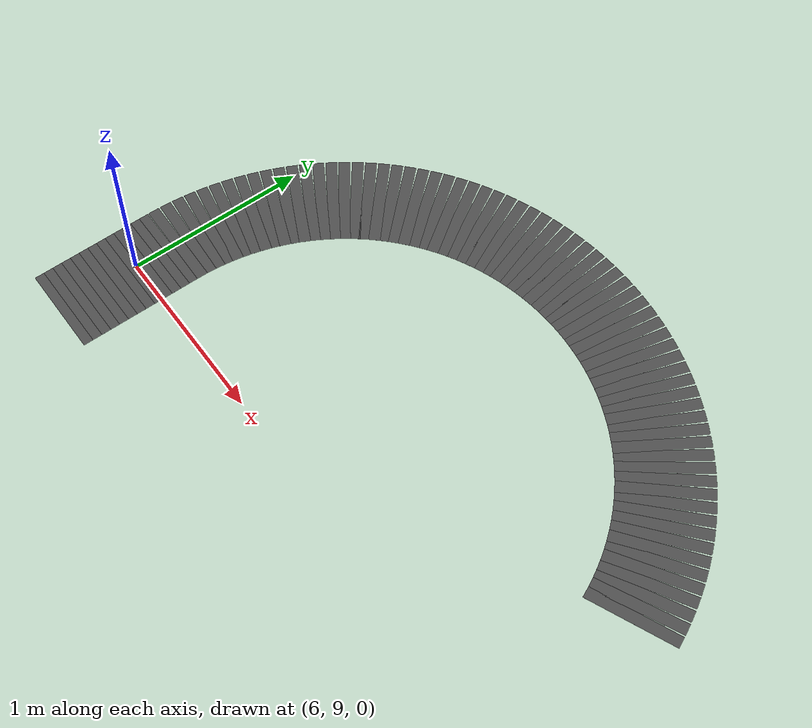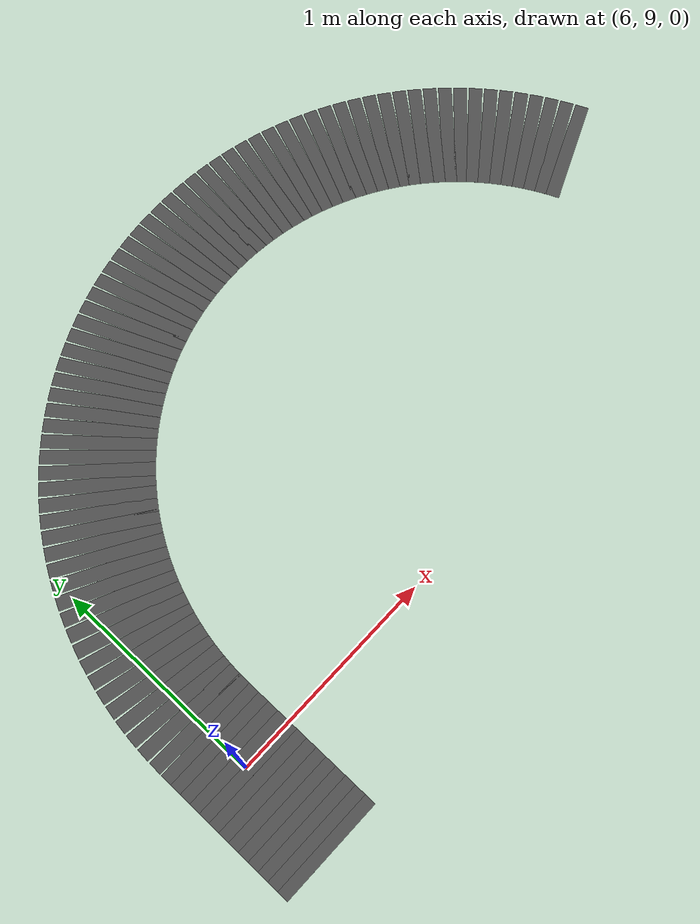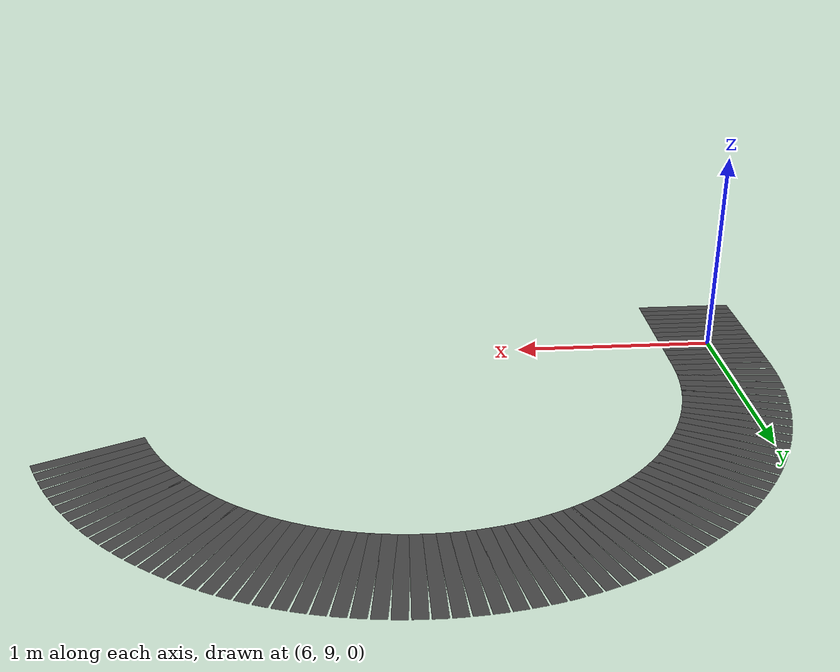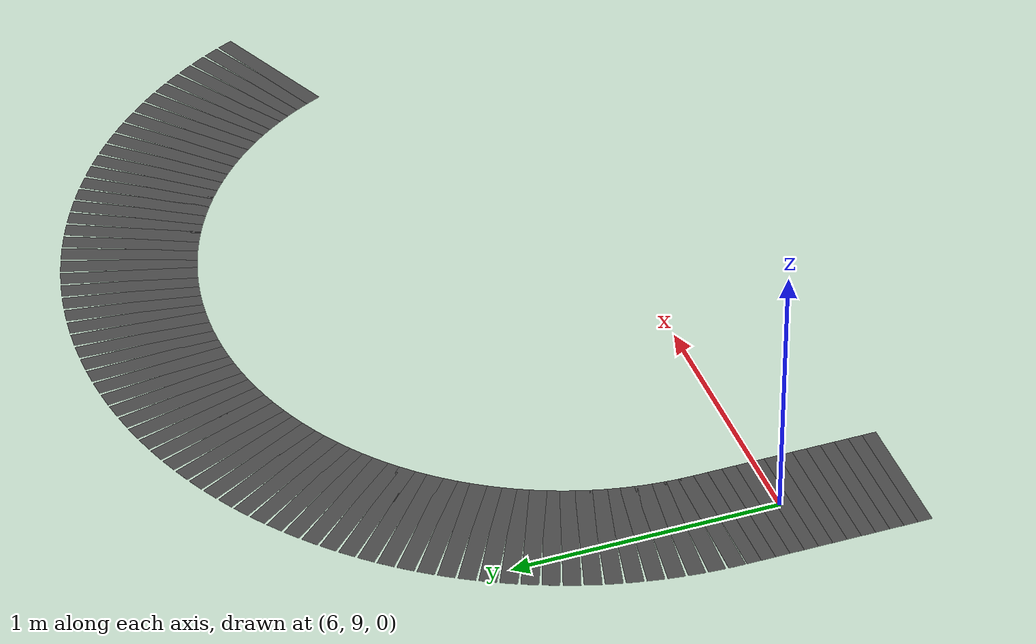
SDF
<sdf version="1.7">
 <model name="default">
  <model name="road_seg_227">
   <static>1</static>
   <link name="road_link">
    <visual name="road_visual">
     <geometry><box><size>0.062632 0.5 0.0001</size></box></geometry>
     <material>
      <script>
       <uri>model://road_material/materials/scripts</uri>
       <uri>model://road_material/materials/textures</uri>
       <name>MyRoad/Road</name>
      </script>
     </material>
    </visual>
    <collision name="road_collision"><geometry><box><size>0.062632 0.5 0.0001</size></box></geometry></collision>
   </link>
   <pose>9.01455 9.86384 0 0 -0 1.98835</pose>
  </model>
  <model name="road_seg_228">
   <static>1</static>
   <link name="road_link">
    <visual name="road_visual">
     <geometry><box><size>0.062632 0.5 0.0001</size></box></geometry>
     <material>
      <script>
       <uri>model://road_material/materials/scripts</uri>
       <uri>model://road_material/materials/textures</uri>
       <name>MyRoad/Road</name>
      </script>
     </material>
    </visual>
    <collision name="road_collision"><geometry><box><size>0.062632 0.5 0.0001</size></box></geometry></collision>
   </link>
   <pose>8.98802 9.92056 0 0 -0 2.02812</pose>
  </model>
  <model name="road_seg_229">
   <static>1</static>
   <link name="road_link">
    <visual name="road_visual">
     <geometry><box><size>0.062632 0.5 0.0001</size></box></geometry>
     <material>
      <script>
       <uri>model://road_material/materials/scripts</uri>
       <uri>model://road_material/materials/textures</uri>
       <name>MyRoad/Road</name>
      </script>
     </material>
    </visual>
    <collision name="road_collision"><geometry><box><size>0.062632 0.5 0.0001</size></box></geometry></collision>
   </link>
   <pose>8.95926 9.97619 0 0 -0 2.06788</pose>
  </model>
  <model name="road_seg_230">
   <static>1</static>
   <link name="road_link">
    <visual name="road_visual">
     <geometry><box><size>0.062632 0.5 0.0001</size></box></geometry>
     <material>
      <script>
       <uri>model://road_material/materials/scripts</uri>
       <uri>model://road_material/materials/textures</uri>
       <name>MyRoad/Road</name>
      </script>
     </material>
    </visual>
    <collision name="road_collision"><geometry><box><size>0.062632 0.5 0.0001</size></box></geometry></collision>
   </link>
   <pose>8.92831 10.0306 0 0 -0 2.10765</pose>
  </model>
  <model name="road_seg_231">
   <static>1</static>
   <link name="road_link">
    <visual name="road_visual">
     <geometry><box><size>0.062632 0.5 0.0001</size></box></geometry>
     <material>
      <script>
       <uri>model://road_material/materials/scripts</uri>
       <uri>model://road_material/materials/textures</uri>
       <name>MyRoad/Road</name>
      </script>
     </material>
    </visual>
    <collision name="road_collision"><geometry><box><size>0.062632 0.5 0.0001</size></box></geometry></collision>
   </link>
   <pose>8.89522 10.0838 0 0 -0 2.14742</pose>
  </model>
  <model name="road_seg_232">
   <static>1</static>
   <link name="road_link">
    <visual name="road_visual">
     <geometry><box><size>0.062632 0.5 0.0001</size></box></geometry>
     <material>
      <script>
       <uri>model://road_material/materials/scripts</uri>
       <uri>model://road_material/materials/textures</uri>
       <name>MyRoad/Road</name>
      </script>
     </material>
    </visual>
    <collision name="road_collision"><geometry><box><size>0.062632 0.5 0.0001</size></box></geometry></collision>
   </link>
   <pose>8.86004 10.1356 0 0 -0 2.18718</pose>
  </model>
  <model name="road_seg_233">
   <static>1</static>
   <link name="road_link">
    <visual name="road_visual">
     <geometry><box><size>0.062632 0.5 0.0001</size></box></geometry>
     <material>
      <script>
       <uri>model://road_material/materials/scripts</uri>
       <uri>model://road_material/materials/textures</uri>
       <name>MyRoad/Road</name>
      </script>
     </material>
    </visual>
    <collision name="road_collision"><geometry><box><size>0.062632 0.5 0.0001</size></box></geometry></collision>
   </link>
   <pose>8.82283 10.186 0 0 -0 2.22695</pose>
  </model>
  <model name="road_seg_234">
   <static>1</static>
   <link name="road_link">
    <visual name="road_visual">
     <geometry><box><size>0.062632 0.5 0.0001</size></box></geometry>
     <material>
      <script>
       <uri>model://road_material/materials/scripts</uri>
       <uri>model://road_material/materials/textures</uri>
       <name>MyRoad/Road</name>
      </script>
     </material>
    </visual>
    <collision name="road_collision"><geometry><box><size>0.062632 0.5 0.0001</size></box></geometry></collision>
   </link>
   <pose>8.78365 10.2348 0 0 -0 2.26672</pose>
  </model>
  <model name="road_seg_235">
   <static>1</static>
   <link name="road_link">
    <visual name="road_visual">
     <geometry><box><size>0.062632 0.5 0.0001</size></box></geometry>
     <material>
      <script>
       <uri>model://road_material/materials/scripts</uri>
       <uri>model://road_material/materials/textures</uri>
       <name>MyRoad/Road</name>
      </script>
     </material>
    </visual>
    <collision name="road_collision"><geometry><box><size>0.062632 0.5 0.0001</size></box></geometry></collision>
   </link>
   <pose>8.74256 10.2821 0 0 -0 2.30649</pose>
  </model>
  <model name="road_seg_236">
   <static>1</static>
   <link name="road_link">
    <visual name="road_visual">
     <geometry><box><size>0.062632 0.5 0.0001</size></box></geometry>
     <material>
      <script>
       <uri>model://road_material/materials/scripts</uri>
       <uri>model://road_material/materials/textures</uri>
       <name>MyRoad/Road</name>
      </script>
     </material>
    </visual>
    <collision name="road_collision"><geometry><box><size>0.062632 0.5 0.0001</size></box></geometry></collision>
   </link>
   <pose>8.69962 10.3276 0 0 -0 2.34625</pose>
  </model>
  <model name="road_seg_237">
   <static>1</static>
   <link name="road_link">
    <visual name="road_visual">
     <geometry><box><size>0.062632 0.5 0.0001</size></box></geometry>
     <material>
      <script>
       <uri>model://road_material/materials/scripts</uri>
       <uri>model://road_material/materials/textures</uri>
       <name>MyRoad/Road</name>
      </script>
     </material>
    </visual>
    <collision name="road_collision"><geometry><box><size>0.062632 0.5 0.0001</size></box></geometry></collision>
   </link>
   <pose>8.6549 10.3715 0 0 -0 2.38602</pose>
  </model>
  <model name="road_seg_238">
   <static>1</static>
   <link name="road_link">
    <visual name="road_visual">
     <geometry><box><size>0.062632 0.5 0.0001</size></box></geometry>
     <material>
      <script>
       <uri>model://road_material/materials/scripts</uri>
       <uri>model://road_material/materials/textures</uri>
       <name>MyRoad/Road</name>
      </script>
     </material>
    </visual>
    <collision name="road_collision"><geometry><box><size>0.062632 0.5 0.0001</size></box></geometry></collision>
   </link>
   <pose>8.60848 10.4135 0 0 -0 2.42579</pose>
  </model>
  <model name="road_seg_239">
   <static>1</static>
   <link name="road_link">
    <visual name="road_visual">
     <geometry><box><size>0.062632 0.5 0.0001</size></box></geometry>
     <material>
      <script>
       <uri>model://road_material/materials/scripts</uri>
       <uri>model://road_material/materials/textures</uri>
       <name>MyRoad/Road</name>
      </script>
     </material>
    </visual>
    <collision name="road_collision"><geometry><box><size>0.062632 0.5 0.0001</size></box></geometry></collision>
   </link>
   <pose>8.56042 10.4536 0 0 -0 2.46555</pose>
  </model>
  <model name="road_seg_240">
   <static>1</static>
   <link name="road_link">
    <visual name="road_visual">
     <geometry><box><size>0.062632 0.5 0.0001</size></box></geometry>
     <material>
      <script>
       <uri>model://road_material/materials/scripts</uri>
       <uri>model://road_material/materials/textures</uri>
       <name>MyRoad/Road</name>
      </script>
     </material>
    </visual>
    <collision name="road_collision"><geometry><box><size>0.062632 0.5 0.0001</size></box></geometry></collision>
   </link>
   <pose>8.51081 10.4918 0 0 -0 2.50532</pose>
  </model>
  <model name="road_seg_241">
   <static>1</static>
   <link name="road_link">
    <visual name="road_visual">
     <geometry><box><size>0.062632 0.5 0.0001</size></box></geometry>
     <material>
      <script>
       <uri>model://road_material/materials/scripts</uri>
       <uri>model://road_material/materials/textures</uri>
       <name>MyRoad/Road</name>
      </script>
     </material>
    </visual>
    <collision name="road_collision"><geometry><box><size>0.062632 0.5 0.0001</size></box></geometry></collision>
   </link>
   <pose>8.45971 10.528 0 0 -0 2.54509</pose>
  </model>
  <model name="road_seg_242">
   <static>1</static>
   <link name="road_link">
    <visual name="road_visual">
     <geometry><box><size>0.062632 0.5 0.0001</size></box></geometry>
     <material>
      <script>
       <uri>model://road_material/materials/scripts</uri>
       <uri>model://road_material/materials/textures</uri>
       <name>MyRoad/Road</name>
      </script>
     </material>
    </visual>
    <collision name="road_collision"><geometry><box><size>0.062632 0.5 0.0001</size></box></geometry></collision>
   </link>
   <pose>8.40722 10.5622 0 0 -0 2.58485</pose>
  </model>
  <model name="road_seg_243">
   <static>1</static>
   <link name="road_link">
    <visual name="road_visual">
     <geometry><box><size>0.062632 0.5 0.0001</size></box></geometry>
     <material>
      <script>
       <uri>model://road_material/materials/scripts</uri>
       <uri>model://road_material/materials/textures</uri>
       <name>MyRoad/Road</name>
      </script>
     </material>
    </visual>
    <collision name="road_collision"><geometry><box><size>0.062632 0.5 0.0001</size></box></geometry></collision>
   </link>
   <pose>8.3534 10.5942 0 0 -0 2.62462</pose>
  </model>
  <model name="road_seg_244">
   <static>1</static>
   <link name="road_link">
    <visual name="road_visual">
     <geometry><box><size>0.062632 0.5 0.0001</size></box></geometry>
     <material>
      <script>
       <uri>model://road_material/materials/scripts</uri>
       <uri>model://road_material/materials/textures</uri>
       <name>MyRoad/Road</name>
      </script>
     </material>
    </visual>
    <collision name="road_collision"><geometry><box><size>0.062632 0.5 0.0001</size></box></geometry></collision>
   </link>
   <pose>8.29836 10.6241 0 0 -0 2.66439</pose>
  </model>
  <model name="road_seg_245">
   <static>1</static>
   <link name="road_link">
    <visual name="road_visual">
     <geometry><box><size>0.062632 0.5 0.0001</size></box></geometry>
     <material>
      <script>
       <uri>model://road_material/materials/scripts</uri>
       <uri>model://road_material/materials/textures</uri>
       <name>MyRoad/Road</name>
      </script>
     </material>
    </visual>
    <collision name="road_collision"><geometry><box><size>0.062632 0.5 0.0001</size></box></geometry></collision>
   </link>
   <pose>8.24218 10.6517 0 0 -0 2.70416</pose>
  </model>
  <model name="road_seg_246">
   <static>1</static>
   <link name="road_link">
    <visual name="road_visual">
     <geometry><box><size>0.062632 0.5 0.0001</size></box></geometry>
     <material>
      <script>
       <uri>model://road_material/materials/scripts</uri>
       <uri>model://road_material/materials/textures</uri>
       <name>MyRoad/Road</name>
      </script>
     </material>
    </visual>
    <collision name="road_collision"><geometry><box><size>0.062632 0.5 0.0001</size></box></geometry></collision>
   </link>
   <pose>8.18494 10.6771 0 0 -0 2.74392</pose>
  </model>
  <model name="road_seg_247">
   <static>1</static>
   <link name="road_link">
    <visual name="road_visual">
     <geometry><box><size>0.062632 0.5 0.0001</size></box></geometry>
     <material>
      <script>
       <uri>model://road_material/materials/scripts</uri>
       <uri>model://road_material/materials/textures</uri>
       <name>MyRoad/Road</name>
      </script>
     </material>
    </visual>
    <collision name="road_collision"><geometry><box><size>0.062632 0.5 0.0001</size></box></geometry></collision>
   </link>
   <pose>8.12674 10.7002 0 0 -0 2.78369</pose>
  </model>
  <model name="road_seg_248">
   <static>1</static>
   <link name="road_link">
    <visual name="road_visual">
     <geometry><box><size>0.062632 0.5 0.0001</size></box></geometry>
     <material>
      <script>
       <uri>model://road_material/materials/scripts</uri>
       <uri>model://road_material/materials/textures</uri>
       <name>MyRoad/Road</name>
      </script>
     </material>
    </visual>
    <collision name="road_collision"><geometry><box><size>0.062632 0.5 0.0001</size></box></geometry></collision>
   </link>
   <pose>8.06766 10.721 0 0 -0 2.82346</pose>
  </model>
  <model name="road_seg_249">
   <static>1</static>
   <link name="road_link">
    <visual name="road_visual">
     <geometry><box><size>0.062632 0.5 0.0001</size></box></geometry>
     <material>
      <script>
       <uri>model://road_material/materials/scripts</uri>
       <uri>model://road_material/materials/textures</uri>
       <name>MyRoad/Road</name>
      </script>
     </material>
    </visual>
    <collision name="road_collision"><geometry><box><size>0.062632 0.5 0.0001</size></box></geometry></collision>
   </link>
   <pose>8.0078 10.7394 0 0 -0 2.86322</pose>
  </model>
  <model name="road_seg_250">
   <static>1</static>
   <link name="road_link">
    <visual name="road_visual">
     <geometry><box><size>0.062632 0.5 0.0001</size></box></geometry>
     <material>
      <script>
       <uri>model://road_material/materials/scripts</uri>
       <uri>model://road_material/materials/textures</uri>
       <name>MyRoad/Road</name>
      </script>
     </material>
    </visual>
    <collision name="road_collision"><geometry><box><size>0.062632 0.5 0.0001</size></box></geometry></collision>
   </link>
   <pose>7.94727 10.7554 0 0 -0 2.90299</pose>
  </model>
  <model name="road_seg_251">
   <static>1</static>
   <link name="road_link">
    <visual name="road_visual">
     <geometry><box><size>0.062632 0.5 0.0001</size></box></geometry>
     <material>
      <script>
       <uri>model://road_material/materials/scripts</uri>
       <uri>model://road_material/materials/textures</uri>
       <name>MyRoad/Road</name>
      </script>
     </material>
    </visual>
    <collision name="road_collision"><geometry><box><size>0.062632 0.5 0.0001</size></box></geometry></collision>
   </link>
   <pose>7.88614 10.769 0 0 -0 2.94276</pose>
  </model>
  <model name="road_seg_252">
   <static>1</static>
   <link name="road_link">
    <visual name="road_visual">
     <geometry><box><size>0.062632 0.5 0.0001</size></box></geometry>
     <material>
      <script>
       <uri>model://road_material/materials/scripts</uri>
       <uri>model://road_material/materials/textures</uri>
       <name>MyRoad/Road</name>
      </script>
     </material>
    </visual>
    <collision name="road_collision"><geometry><box><size>0.062632 0.5 0.0001</size></box></geometry></collision>
   </link>
   <pose>7.82452 10.7801 0 0 -0 2.98252</pose>
  </model>
  <model name="road_seg_253">
   <static>1</static>
   <link name="road_link">
    <visual name="road_visual">
     <geometry><box><size>0.062632 0.5 0.0001</size></box></geometry>
     <material>
      <script>
       <uri>model://road_material/materials/scripts</uri>
       <uri>model://road_material/materials/textures</uri>
       <name>MyRoad/Road</name>
      </script>
     </material>
    </visual>
    <collision name="road_collision"><geometry><box><size>0.062632 0.5 0.0001</size></box></geometry></collision>
   </link>
   <pose>7.7625 10.7888 0 0 -0 3.02229</pose>
  </model>
  <model name="road_seg_254">
   <static>1</static>
   <link name="road_link">
    <visual name="road_visual">
     <geometry><box><size>0.062632 0.5 0.0001</size></box></geometry>
     <material>
      <script>
       <uri>model://road_material/materials/scripts</uri>
       <uri>model://road_material/materials/textures</uri>
       <name>MyRoad/Road</name>
      </script>
     </material>
    </visual>
    <collision name="road_collision"><geometry><box><size>0.062632 0.5 0.0001</size></box></geometry></collision>
   </link>
   <pose>7.70019 10.795 0 0 -0 3.06206</pose>
  </model>
  <model name="road_seg_255">
   <static>1</static>
   <link name="road_link">
    <visual name="road_visual">
     <geometry><box><size>0.062632 0.5 0.0001</size></box></geometry>
     <material>
      <script>
       <uri>model://road_material/materials/scripts</uri>
       <uri>model://road_material/materials/textures</uri>
       <name>MyRoad/Road</name>
      </script>
     </material>
    </visual>
    <collision name="road_collision"><geometry><box><size>0.062632 0.5 0.0001</size></box></geometry></collision>
   </link>
   <pose>7.63769 10.7988 0 0 -0 3.10183</pose>
  </model>
  <model name="road_seg_256">
   <static>1</static>
   <link name="road_link">
    <visual name="road_visual">
     <geometry><box><size>0.062632 0.5 0.0001</size></box></geometry>
     <material>
      <script>
       <uri>model://road_material/materials/scripts</uri>
       <uri>model://road_material/materials/textures</uri>
       <name>MyRoad/Road</name>
      </script>
     </material>
    </visual>
    <collision name="road_collision"><geometry><box><size>0.062632 0.5 0.0001</size></box></geometry></collision>
   </link>
   <pose>7.57508 10.8 0 0 -0 3.14159</pose>
  </model>
  <model name="road_seg_257">
   <static>1</static>
   <link name="road_link">
    <visual name="road_visual">
     <geometry><box><size>0.062632 0.5 0.0001</size></box></geometry>
     <material>
      <script>
       <uri>model://road_material/materials/scripts</uri>
       <uri>model://road_material/materials/textures</uri>
       <name>MyRoad/Road</name>
      </script>
     </material>
    </visual>
    <collision name="road_collision"><geometry><box><size>0.062632 0.5 0.0001</size></box></geometry></collision>
   </link>
   <pose>7.51247 10.7988 0 0 0 -3.10183</pose>
  </model>
  <model name="road_seg_258">
   <static>1</static>
   <link name="road_link">
    <visual name="road_visual">
     <geometry><box><size>0.062632 0.5 0.0001</size></box></geometry>
     <material>
      <script>
       <uri>model://road_material/materials/scripts</uri>
       <uri>model://road_material/materials/textures</uri>
       <name>MyRoad/Road</name>
      </script>
     </material>
    </visual>
    <collision name="road_collision"><geometry><box><size>0.062632 0.5 0.0001</size></box></geometry></collision>
   </link>
   <pose>7.44996 10.795 0 0 0 -3.06206</pose>
  </model>
  <model name="road_seg_259">
   <static>1</static>
   <link name="road_link">
    <visual name="road_visual">
     <geometry><box><size>0.062632 0.5 0.0001</size></box></geometry>
     <material>
      <script>
       <uri>model://road_material/materials/scripts</uri>
       <uri>model://road_material/materials/textures</uri>
       <name>MyRoad/Road</name>
      </script>
     </material>
    </visual>
    <collision name="road_collision"><geometry><box><size>0.062632 0.5 0.0001</size></box></geometry></collision>
   </link>
   <pose>7.38765 10.7888 0 0 0 -3.02229</pose>
  </model>
  <model name="road_seg_260">
   <static>1</static>
   <link name="road_link">
    <visual name="road_visual">
     <geometry><box><size>0.062632 0.5 0.0001</size></box></geometry>
     <material>
      <script>
       <uri>model://road_material/materials/scripts</uri>
       <uri>model://road_material/materials/textures</uri>
       <name>MyRoad/Road</name>
      </script>
     </material>
    </visual>
    <collision name="road_collision"><geometry><box><size>0.062632 0.5 0.0001</size></box></geometry></collision>
   </link>
   <pose>7.32564 10.7801 0 0 0 -2.98252</pose>
  </model>
  <model name="road_seg_261">
   <static>1</static>
   <link name="road_link">
    <visual name="road_visual">
     <geometry><box><size>0.062632 0.5 0.0001</size></box></geometry>
     <material>
      <script>
       <uri>model://road_material/materials/scripts</uri>
       <uri>model://road_material/materials/textures</uri>
       <name>MyRoad/Road</name>
      </script>
     </material>
    </visual>
    <collision name="road_collision"><geometry><box><size>0.062632 0.5 0.0001</size></box></geometry></collision>
   </link>
   <pose>7.26402 10.769 0 0 0 -2.94276</pose>
  </model>
  <model name="road_seg_262">
   <static>1</static>
   <link name="road_link">
    <visual name="road_visual">
     <geometry><box><size>0.062632 0.5 0.0001</size></box></geometry>
     <material>
      <script>
       <uri>model://road_material/materials/scripts</uri>
       <uri>model://road_material/materials/textures</uri>
       <name>MyRoad/Road</name>
      </script>
     </material>
    </visual>
    <collision name="road_collision"><geometry><box><size>0.062632 0.5 0.0001</size></box></geometry></collision>
   </link>
   <pose>7.20289 10.7554 0 0 0 -2.90299</pose>
  </model>
  <model name="road_seg_263">
   <static>1</static>
   <link name="road_link">
    <visual name="road_visual">
     <geometry><box><size>0.062632 0.5 0.0001</size></box></geometry>
     <material>
      <script>
       <uri>model://road_material/materials/scripts</uri>
       <uri>model://road_material/materials/textures</uri>
       <name>MyRoad/Road</name>
      </script>
     </material>
    </visual>
    <collision name="road_collision"><geometry><box><size>0.062632 0.5 0.0001</size></box></geometry></collision>
   </link>
   <pose>7.14235 10.7394 0 0 0 -2.86322</pose>
  </model>
  <model name="road_seg_264">
   <static>1</static>
   <link name="road_link">
    <visual name="road_visual">
     <geometry><box><size>0.062632 0.5 0.0001</size></box></geometry>
     <material>
      <script>
       <uri>model://road_material/materials/scripts</uri>
       <uri>model://road_material/materials/textures</uri>
       <name>MyRoad/Road</name>
      </script>
     </material>
    </visual>
    <collision name="road_collision"><geometry><box><size>0.062632 0.5 0.0001</size></box></geometry></collision>
   </link>
   <pose>7.0825 10.721 0 0 0 -2.82346</pose>
  </model>
  <model name="road_seg_265">
   <static>1</static>
   <link name="road_link">
    <visual name="road_visual">
     <geometry><box><size>0.062632 0.5 0.0001</size></box></geometry>
     <material>
      <script>
       <uri>model://road_material/materials/scripts</uri>
       <uri>model://road_material/materials/textures</uri>
       <name>MyRoad/Road</name>
      </script>
     </material>
    </visual>
    <collision name="road_collision"><geometry><box><size>0.062632 0.5 0.0001</size></box></geometry></collision>
   </link>
   <pose>7.02342 10.7002 0 0 0 -2.78369</pose>
  </model>
  <model name="road_seg_266">
   <static>1</static>
   <link name="road_link">
    <visual name="road_visual">
     <geometry><box><size>0.062632 0.5 0.0001</size></box></geometry>
     <material>
      <script>
       <uri>model://road_material/materials/scripts</uri>
       <uri>model://road_material/materials/textures</uri>
       <name>MyRoad/Road</name>
      </script>
     </material>
    </visual>
    <collision name="road_collision"><geometry><box><size>0.062632 0.5 0.0001</size></box></geometry></collision>
   </link>
   <pose>6.96522 10.6771 0 0 0 -2.74392</pose>
  </model>
  <model name="road_seg_267">
   <static>1</static>
   <link name="road_link">
    <visual name="road_visual">
     <geometry><box><size>0.062632 0.5 0.0001</size></box></geometry>
     <material>
      <script>
       <uri>model://road_material/materials/scripts</uri>
       <uri>model://road_material/materials/textures</uri>
       <name>MyRoad/Road</name>
      </script>
     </material>
    </visual>
    <collision name="road_collision"><geometry><box><size>0.062632 0.5 0.0001</size></box></geometry></collision>
   </link>
   <pose>6.90798 10.6517 0 0 0 -2.70416</pose>
  </model>
  <model name="road_seg_268">
   <static>1</static>
   <link name="road_link">
    <visual name="road_visual">
     <geometry><box><size>0.062632 0.5 0.0001</size></box></geometry>
     <material>
      <script>
       <uri>model://road_material/materials/scripts</uri>
       <uri>model://road_material/materials/textures</uri>
       <name>MyRoad/Road</name>
      </script>
     </material>
    </visual>
    <collision name="road_collision"><geometry><box><size>0.062632 0.5 0.0001</size></box></geometry></collision>
   </link>
   <pose>6.85179 10.6241 0 0 0 -2.66439</pose>
  </model>
  <model name="road_seg_269">
   <static>1</static>
   <link name="road_link">
    <visual name="road_visual">
     <geometry><box><size>0.062632 0.5 0.0001</size></box></geometry>
     <material>
      <script>
       <uri>model://road_material/materials/scripts</uri>
       <uri>model://road_material/materials/textures</uri>
       <name>MyRoad/Road</name>
      </script>
     </material>
    </visual>
    <collision name="road_collision"><geometry><box><size>0.062632 0.5 0.0001</size></box></geometry></collision>
   </link>
   <pose>6.79675 10.5942 0 0 0 -2.62462</pose>
  </model>
  <model name="road_seg_270">
   <static>1</static>
   <link name="road_link">
    <visual name="road_visual">
     <geometry><box><size>0.062632 0.5 0.0001</size></box></geometry>
     <material>
      <script>
       <uri>model://road_material/materials/scripts</uri>
       <uri>model://road_material/materials/textures</uri>
       <name>MyRoad/Road</name>
      </script>
     </material>
    </visual>
    <collision name="road_collision"><geometry><box><size>0.062632 0.5 0.0001</size></box></geometry></collision>
   </link>
   <pose>6.74294 10.5622 0 0 0 -2.58485</pose>
  </model>
  <model name="road_seg_271">
   <static>1</static>
   <link name="road_link">
    <visual name="road_visual">
     <geometry><box><size>0.062632 0.5 0.0001</size></box></geometry>
     <material>
      <script>
       <uri>model://road_material/materials/scripts</uri>
       <uri>model://road_material/materials/textures</uri>
       <name>MyRoad/Road</name>
      </script>
     </material>
    </visual>
    <collision name="road_collision"><geometry><box><size>0.062632 0.5 0.0001</size></box></geometry></collision>
   </link>
   <pose>6.69045 10.528 0 0 0 -2.54509</pose>
  </model>
  <model name="road_seg_272">
   <static>1</static>
   <link name="road_link">
    <visual name="road_visual">
     <geometry><box><size>0.062632 0.5 0.0001</size></box></geometry>
     <material>
      <script>
       <uri>model://road_material/materials/scripts</uri>
       <uri>model://road_material/materials/textures</uri>
       <name>MyRoad/Road</name>
      </script>
     </material>
    </visual>
    <collision name="road_collision"><geometry><box><size>0.062632 0.5 0.0001</size></box></geometry></collision>
   </link>
   <pose>6.63935 10.4918 0 0 0 -2.50532</pose>
  </model>
  <model name="road_seg_273">
   <static>1</static>
   <link name="road_link">
    <visual name="road_visual">
     <geometry><box><size>0.062632 0.5 0.0001</size></box></geometry>
     <material>
      <script>
       <uri>model://road_material/materials/scripts</uri>
       <uri>model://road_material/materials/textures</uri>
       <name>MyRoad/Road</name>
      </script>
     </material>
    </visual>
    <collision name="road_collision"><geometry><box><size>0.062632 0.5 0.0001</size></box></geometry></collision>
   </link>
   <pose>6.58973 10.4536 0 0 0 -2.46555</pose>
  </model>
  <model name="road_seg_274">
   <static>1</static>
   <link name="road_link">
    <visual name="road_visual">
     <geometry><box><size>0.062632 0.5 0.0001</size></box></geometry>
     <material>
      <script>
       <uri>model://road_material/materials/scripts</uri>
       <uri>model://road_material/materials/textures</uri>
       <name>MyRoad/Road</name>
      </script>
     </material>
    </visual>
    <collision name="road_collision"><geometry><box><size>0.062632 0.5 0.0001</size></box></geometry></collision>
   </link>
   <pose>6.54168 10.4135 0 0 0 -2.42579</pose>
  </model>
  <model name="road_seg_275">
   <static>1</static>
   <link name="road_link">
    <visual name="road_visual">
     <geometry><box><size>0.062632 0.5 0.0001</size></box></geometry>
     <material>
      <script>
       <uri>model://road_material/materials/scripts</uri>
       <uri>model://road_material/materials/textures</uri>
       <name>MyRoad/Road</name>
      </script>
     </material>
    </visual>
    <collision name="road_collision"><geometry><box><size>0.062632 0.5 0.0001</size></box></geometry></collision>
   </link>
   <pose>6.49525 10.3715 0 0 0 -2.38602</pose>
  </model>
  <model name="road_seg_276">
   <static>1</static>
   <link name="road_link">
    <visual name="road_visual">
     <geometry><box><size>0.062632 0.5 0.0001</size></box></geometry>
     <material>
      <script>
       <uri>model://road_material/materials/scripts</uri>
       <uri>model://road_material/materials/textures</uri>
       <name>MyRoad/Road</name>
      </script>
     </material>
    </visual>
    <collision name="road_collision"><geometry><box><size>0.062632 0.5 0.0001</size></box></geometry></collision>
   </link>
   <pose>6.45053 10.3276 0 0 0 -2.34625</pose>
  </model>
  <model name="road_seg_277">
   <static>1</static>
   <link name="road_link">
    <visual name="road_visual">
     <geometry><box><size>0.062632 0.5 0.0001</size></box></geometry>
     <material>
      <script>
       <uri>model://road_material/materials/scripts</uri>
       <uri>model://road_material/materials/textures</uri>
       <name>MyRoad/Road</name>
      </script>
     </material>
    </visual>
    <collision name="road_collision"><geometry><box><size>0.062632 0.5 0.0001</size></box></geometry></collision>
   </link>
   <pose>6.4076 10.2821 0 0 0 -2.30649</pose>
  </model>
  <model name="road_seg_278">
   <static>1</static>
   <link name="road_link">
    <visual name="road_visual">
     <geometry><box><size>0.062632 0.5 0.0001</size></box></geometry>
     <material>
      <script>
       <uri>model://road_material/materials/scripts</uri>
       <uri>model://road_material/materials/textures</uri>
       <name>MyRoad/Road</name>
      </script>
     </material>
    </visual>
    <collision name="road_collision"><geometry><box><size>0.062632 0.5 0.0001</size></box></geometry></collision>
   </link>
   <pose>6.3665 10.2348 0 0 0 -2.26672</pose>
  </model>
  <model name="road_seg_279">
   <static>1</static>
   <link name="road_link">
    <visual name="road_visual">
     <geometry><box><size>0.062632 0.5 0.0001</size></box></geometry>
     <material>
      <script>
       <uri>model://road_material/materials/scripts</uri>
       <uri>model://road_material/materials/textures</uri>
       <name>MyRoad/Road</name>
      </script>
     </material>
    </visual>
    <collision name="road_collision"><geometry><box><size>0.062632 0.5 0.0001</size></box></geometry></collision>
   </link>
   <pose>6.32732 10.186 0 0 0 -2.22695</pose>
  </model>
  <model name="road_seg_280">
   <static>1</static>
   <link name="road_link">
    <visual name="road_visual">
     <geometry><box><size>0.062632 0.5 0.0001</size></box></geometry>
     <material>
      <script>
       <uri>model://road_material/materials/scripts</uri>
       <uri>model://road_material/materials/textures</uri>
       <name>MyRoad/Road</name>
      </script>
     </material>
    </visual>
    <collision name="road_collision"><geometry><box><size>0.062632 0.5 0.0001</size></box></geometry></collision>
   </link>
   <pose>6.29011 10.1356 0 0 0 -2.18718</pose>
  </model>
  <model name="road_seg_281">
   <static>1</static>
   <link name="road_link">
    <visual name="road_visual">
     <geometry><box><size>0.062632 0.5 0.0001</size></box></geometry>
     <material>
      <script>
       <uri>model://road_material/materials/scripts</uri>
       <uri>model://road_material/materials/textures</uri>
       <name>MyRoad/Road</name>
      </script>
     </material>
    </visual>
    <collision name="road_collision"><geometry><box><size>0.062632 0.5 0.0001</size></box></geometry></collision>
   </link>
   <pose>6.25494 10.0838 0 0 0 -2.14742</pose>
  </model>
  <model name="road_seg_282">
   <static>1</static>
   <link name="road_link">
    <visual name="road_visual">
     <geometry><box><size>0.062632 0.5 0.0001</size></box></geometry>
     <material>
      <script>
       <uri>model://road_material/materials/scripts</uri>
       <uri>model://road_material/materials/textures</uri>
       <name>MyRoad/Road</name>
      </script>
     </material>
    </visual>
    <collision name="road_collision"><geometry><box><size>0.062632 0.5 0.0001</size></box></geometry></collision>
   </link>
   <pose>6.22185 10.0306 0 0 0 -2.10765</pose>
  </model>
  <model name="road_seg_283">
   <static>1</static>
   <link name="road_link">
    <visual name="road_visual">
     <geometry><box><size>0.062632 0.5 0.0001</size></box></geometry>
     <material>
      <script>
       <uri>model://road_material/materials/scripts</uri>
       <uri>model://road_material/materials/textures</uri>
       <name>MyRoad/Road</name>
      </script>
     </material>
    </visual>
    <collision name="road_collision"><geometry><box><size>0.062632 0.5 0.0001</size></box></geometry></collision>
   </link>
   <pose>6.1909 9.97619 0 0 0 -2.06788</pose>
  </model>
  <model name="road_seg_284">
   <static>1</static>
   <link name="road_link">
    <visual name="road_visual">
     <geometry><box><size>0.062632 0.5 0.0001</size></box></geometry>
     <material>
      <script>
       <uri>model://road_material/materials/scripts</uri>
       <uri>model://road_material/materials/textures</uri>
       <name>MyRoad/Road</name>
      </script>
     </material>
    </visual>
    <collision name="road_collision"><geometry><box><size>0.062632 0.5 0.0001</size></box></geometry></collision>
   </link>
   <pose>6.16214 9.92056 0 0 0 -2.02812</pose>
  </model>
  <model name="road_seg_285">
   <static>1</static>
   <link name="road_link">
    <visual name="road_visual">
     <geometry><box><size>0.062632 0.5 0.0001</size></box></geometry>
     <material>
      <script>
       <uri>model://road_material/materials/scripts</uri>
       <uri>model://road_material/materials/textures</uri>
       <name>MyRoad/Road</name>
      </script>
     </material>
    </visual>
    <collision name="road_collision"><geometry><box><size>0.062632 0.5 0.0001</size></box></geometry></collision>
   </link>
   <pose>6.13561 9.86384 0 0 0 -1.98835</pose>
  </model>
  <model name="road_seg_286">
   <static>1</static>
   <link name="road_link">
    <visual name="road_visual">
     <geometry><box><size>0.062632 0.5 0.0001</size></box></geometry>
     <material>
      <script>
       <uri>model://road_material/materials/scripts</uri>
       <uri>model://road_material/materials/textures</uri>
       <name>MyRoad/Road</name>
      </script>
     </material>
    </visual>
    <collision name="road_collision"><geometry><box><size>0.062632 0.5 0.0001</size></box></geometry></collision>
   </link>
   <pose>6.11136 9.80611 0 0 0 -1.94858</pose>
  </model>
  <model name="road_seg_287">
   <static>1</static>
   <link name="road_link">
    <visual name="road_visual">
     <geometry><box><size>0.062632 0.5 0.0001</size></box></geometry>
     <material>
      <script>
       <uri>model://road_material/materials/scripts</uri>
       <uri>model://road_material/materials/textures</uri>
       <name>MyRoad/Road</name>
      </script>
     </material>
    </visual>
    <collision name="road_collision"><geometry><box><size>0.062632 0.5 0.0001</size></box></geometry></collision>
   </link>
   <pose>6.08942 9.74746 0 0 0 -1.90882</pose>
  </model>
  <model name="road_seg_288">
   <static>1</static>
   <link name="road_link">
    <visual name="road_visual">
     <geometry><box><size>0.062632 0.5 0.0001</size></box></geometry>
     <material>
      <script>
       <uri>model://road_material/materials/scripts</uri>
       <uri>model://road_material/materials/textures</uri>
       <name>MyRoad/Road</name>
      </script>
     </material>
    </visual>
    <collision name="road_collision"><geometry><box><size>0.062632 0.5 0.0001</size></box></geometry></collision>
   </link>
   <pose>6.06983 9.68798 0 0 0 -1.86905</pose>
  </model>
  <model name="road_seg_289">
   <static>1</static>
   <link name="road_link">
    <visual name="road_visual">
     <geometry><box><size>0.062632 0.5 0.0001</size></box></geometry>
     <material>
      <script>
       <uri>model://road_material/materials/scripts</uri>
       <uri>model://road_material/materials/textures</uri>
       <name>MyRoad/Road</name>
      </script>
     </material>
    </visual>
    <collision name="road_collision"><geometry><box><size>0.062632 0.5 0.0001</size></box></geometry></collision>
   </link>
   <pose>6.05263 9.62777 0 0 0 -1.82928</pose>
  </model>
  <model name="road_seg_290">
   <static>1</static>
   <link name="road_link">
    <visual name="road_visual">
     <geometry><box><size>0.062632 0.5 0.0001</size></box></geometry>
     <material>
      <script>
       <uri>model://road_material/materials/scripts</uri>
       <uri>model://road_material/materials/textures</uri>
       <name>MyRoad/Road</name>
      </script>
     </material>
    </visual>
    <collision name="road_collision"><geometry><box><size>0.062632 0.5 0.0001</size></box></geometry></collision>
   </link>
   <pose>6.03783 9.56692 0 0 0 -1.78951</pose>
  </model>
  <model name="road_seg_291">
   <static>1</static>
   <link name="road_link">
    <visual name="road_visual">
     <geometry><box><size>0.062632 0.5 0.0001</size></box></geometry>
     <material>
      <script>
       <uri>model://road_material/materials/scripts</uri>
       <uri>model://road_material/materials/textures</uri>
       <name>MyRoad/Road</name>
      </script>
     </material>
    </visual>
    <collision name="road_collision"><geometry><box><size>0.062632 0.5 0.0001</size></box></geometry></collision>
   </link>
   <pose>6.02546 9.50554 0 0 0 -1.74975</pose>
  </model>
  <model name="road_seg_292">
   <static>1</static>
   <link name="road_link">
    <visual name="road_visual">
     <geometry><box><size>0.062632 0.5 0.0001</size></box></geometry>
     <material>
      <script>
       <uri>model://road_material/materials/scripts</uri>
       <uri>model://road_material/materials/textures</uri>
       <name>MyRoad/Road</name>
      </script>
     </material>
    </visual>
    <collision name="road_collision"><geometry><box><size>0.062632 0.5 0.0001</size></box></geometry></collision>
   </link>
   <pose>6.01554 9.44371 0 0 0 -1.70998</pose>
  </model>
  <model name="road_seg_293">
   <static>1</static>
   <link name="road_link">
    <visual name="road_visual">
     <geometry><box><size>0.062632 0.5 0.0001</size></box></geometry>
     <material>
      <script>
       <uri>model://road_material/materials/scripts</uri>
       <uri>model://road_material/materials/textures</uri>
       <name>MyRoad/Road</name>
      </script>
     </material>
    </visual>
    <collision name="road_collision"><geometry><box><size>0.062632 0.5 0.0001</size></box></geometry></collision>
   </link>
   <pose>6.00809 9.38154 0 0 0 -1.67021</pose>
  </model>
  <model name="road_seg_294">
   <static>1</static>
   <link name="road_link">
    <visual name="road_visual">
     <geometry><box><size>0.062632 0.5 0.0001</size></box></geometry>
     <material>
      <script>
       <uri>model://road_material/materials/scripts</uri>
       <uri>model://road_material/materials/textures</uri>
       <name>MyRoad/Road</name>
      </script>
     </material>
    </visual>
    <collision name="road_collision"><geometry><box><size>0.062632 0.5 0.0001</size></box></geometry></collision>
   </link>
   <pose>6.00311 9.31911 0 0 0 -1.63045</pose>
  </model>
  <model name="road_seg_295">
   <static>1</static>
   <link name="road_link">
    <visual name="road_visual">
     <geometry><box><size>0.062632 0.5 0.0001</size></box></geometry>
     <material>
      <script>
       <uri>model://road_material/materials/scripts</uri>
       <uri>model://road_material/materials/textures</uri>
       <name>MyRoad/Road</name>
      </script>
     </material>
    </visual>
    <collision name="road_collision"><geometry><box><size>0.062632 0.5 0.0001</size></box></geometry></collision>
   </link>
   <pose>6.00062 9.25654 0 0 0 -1.59068</pose>
  </model>
  <model name="road_seg_296">
   <static>1</static>
   <link name="road_link">
    <visual name="road_visual">
     <geometry><box><size>0.053392 0.5 0.0001</size></box></geometry>
     <material>
      <script>
       <uri>model://road_material/materials/scripts</uri>
       <uri>model://road_material/materials/textures</uri>
       <name>MyRoad/Road</name>
      </script>
     </material>
    </visual>
    <collision name="road_collision"><geometry><box><size>0.053392 0.5 0.0001</size></box></geometry></collision>
   </link>
   <pose>6 9.19854 0 0 0 -1.5708</pose>
  </model>
  <model name="road_seg_297">
   <static>1</static>
   <link name="road_link">
    <visual name="road_visual">
     <geometry><box><size>0.053392 0.5 0.0001</size></box></geometry>
     <material>
      <script>
       <uri>model://road_material/materials/scripts</uri>
       <uri>model://road_material/materials/textures</uri>
       <name>MyRoad/Road</name>
      </script>
     </material>
    </visual>
    <collision name="road_collision"><geometry><box><size>0.053392 0.5 0.0001</size></box></geometry></collision>
   </link>
   <pose>6 9.14514 0 0 0 -1.5708</pose>
  </model>
  <model name="road_seg_298">
   <static>1</static>
   <link name="road_link">
    <visual name="road_visual">
     <geometry><box><size>0.053392 0.5 0.0001</size></box></geometry>
     <material>
      <script>
       <uri>model://road_material/materials/scripts</uri>
       <uri>model://road_material/materials/textures</uri>
       <name>MyRoad/Road</name>
      </script>
     </material>
    </visual>
    <collision name="road_collision"><geometry><box><size>0.053392 0.5 0.0001</size></box></geometry></collision>
   </link>
   <pose>6 9.09175 0 0 0 -1.5708</pose>
  </model>
  <model name="road_seg_299">
   <static>1</static>
   <link name="road_link">
    <visual name="road_visual">
     <geometry><box><size>0.053392 0.5 0.0001</size></box></geometry>
     <material>
      <script>
       <uri>model://road_material/materials/scripts</uri>
       <uri>model://road_material/materials/textures</uri>
       <name>MyRoad/Road</name>
      </script>
     </material>
    </visual>
    <collision name="road_collision"><geometry><box><size>0.053392 0.5 0.0001</size></box></geometry></collision>
   </link>
   <pose>6 9.03836 0 0 0 -1.5708</pose>
  </model>
  <model name="road_seg_300">
   <static>1</static>
   <link name="road_link">
    <visual name="road_visual">
     <geometry><box><size>0.053392 0.5 0.0001</size></box></geometry>
     <material>
      <script>
       <uri>model://road_material/materials/scripts</uri>
       <uri>model://road_material/materials/textures</uri>
       <name>MyRoad/Road</name>
      </script>
     </material>
    </visual>
    <collision name="road_collision"><geometry><box><size>0.053392 0.5 0.0001</size></box></geometry></collision>
   </link>
   <pose>6 8.98497 0 0 0 -1.5708</pose>
  </model>
  <model name="road_seg_301">
   <static>1</static>
   <link name="road_link">
    <visual name="road_visual">
     <geometry><box><size>0.053392 0.5 0.0001</size></box></geometry>
     <material>
      <script>
       <uri>model://road_material/materials/scripts</uri>
       <uri>model://road_material/materials/textures</uri>
       <name>MyRoad/Road</name>
      </script>
     </material>
    </visual>
    <collision name="road_collision"><geometry><box><size>0.053392 0.5 0.0001</size></box></geometry></collision>
   </link>
   <pose>6 8.93157 0 0 0 -1.5708</pose>
  </model>
  <model name="road_seg_302">
   <static>1</static>
   <link name="road_link">
    <visual name="road_visual">
     <geometry><box><size>0.053392 0.5 0.0001</size></box></geometry>
     <material>
      <script>
       <uri>model://road_material/materials/scripts</uri>
       <uri>model://road_material/materials/textures</uri>
       <name>MyRoad/Road</name>
      </script>
     </material>
    </visual>
    <collision name="road_collision"><geometry><box><size>0.053392 0.5 0.0001</size></box></geometry></collision>
   </link>
   <pose>6 8.87818 0 0 0 -1.5708</pose>
  </model>
  <model name="road_seg_303">
   <static>1</static>
   <link name="road_link">
    <visual name="road_visual">
     <geometry><box><size>0.053392 0.5 0.0001</size></box></geometry>
     <material>
      <script>
       <uri>model://road_material/materials/scripts</uri>
       <uri>model://road_material/materials/textures</uri>
       <name>MyRoad/Road</name>
      </script>
     </material>
    </visual>
    <collision name="road_collision"><geometry><box><size>0.053392 0.5 0.0001</size></box></geometry></collision>
   </link>
   <pose>6 8.82479 0 0 0 -1.5708</pose>
  </model>
  <model name="road_seg_304">
   <static>1</static>
   <link name="road_link">
    <visual name="road_visual">
     <geometry><box><size>0.053392 0.5 0.0001</size></box></geometry>
     <material>
      <script>
       <uri>model://road_material/materials/scripts</uri>
       <uri>model://road_material/materials/textures</uri>
       <name>MyRoad/Road</name>
      </script>
     </material>
    </visual>
    <collision name="road_collision"><geometry><box><size>0.053392 0.5 0.0001</size></box></geometry></collision>
   </link>
   <pose>6 8.7714 0 0 0 -1.5708</pose>
  </model>
  <model name="road_seg_305">
   <static>1</static>
   <link name="road_link">
    <visual name="road_visual">
     <geometry><box><size>0.053392 0.5 0.0001</size></box></geometry>
     <material>
      <script>
       <uri>model://road_material/materials/scripts</uri>
       <uri>model://road_material/materials/textures</uri>
       <name>MyRoad/Road</name>
      </script>
     </material>
    </visual>
    <collision name="road_collision"><geometry><box><size>0.053392 0.5 0.0001</size></box></geometry></collision>
   </link>
   <pose>6 8.71801 0 0 0 -1.5708</pose>
  </model>
  <model name="road_seg_306">
   <static>1</static>
   <link name="road_link">
    <visual name="road_visual">
     <geometry><box><size>0.053392 0.5 0.0001</size></box></geometry>
     <material>
      <script>
       <uri>model://road_material/materials/scripts</uri>
       <uri>model://road_material/materials/textures</uri>
       <name>MyRoad/Road</name>
      </script>
     </material>
    </visual>
    <collision name="road_collision"><geometry><box><size>0.053392 0.5 0.0001</size></box></geometry></collision>
   </link>
   <pose>6 8.66461 0 0 0 -1.5708</pose>
  </model>
  <model name="road_seg_307">
   <static>1</static>
   <link name="road_link">
    <visual name="road_visual">
     <geometry><box><size>0.053392 0.5 0.0001</size></box></geometry>
     <material>
      <script>
       <uri>model://road_material/materials/scripts</uri>
       <uri>model://road_material/materials/textures</uri>
       <name>MyRoad/Road</name>
      </script>
     </material>
    </visual>
    <collision name="road_collision"><geometry><box><size>0.053392 0.5 0.0001</size></box></geometry></collision>
   </link>
   <pose>6 8.61122 0 0 0 -1.5708</pose>
  </model>
  <model name="road_seg_308">
   <static>1</static>
   <link name="road_link">
    <visual name="road_visual">
     <geometry><box><size>0.053392 0.5 0.0001</size></box></geometry>
     <material>
      <script>
       <uri>model://road_material/materials/scripts</uri>
       <uri>model://road_material/materials/textures</uri>
       <name>MyRoad/Road</name>
      </script>
     </material>
    </visual>
    <collision name="road_collision"><geometry><box><size>0.053392 0.5 0.0001</size></box></geometry></collision>
   </link>
   <pose>6 8.55783 0 0 0 -1.5708</pose>
  </model>
 </model>
</sdf>
